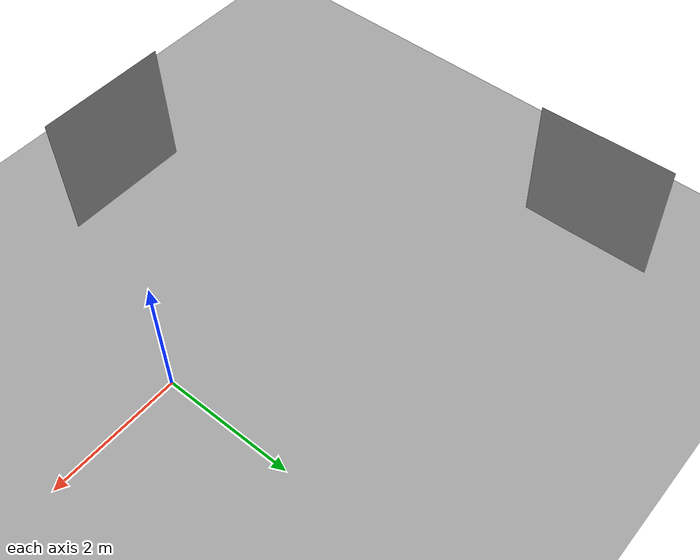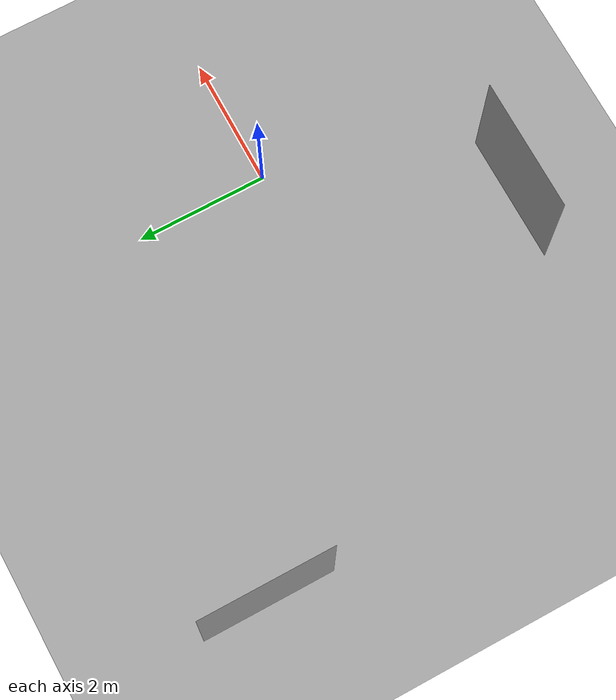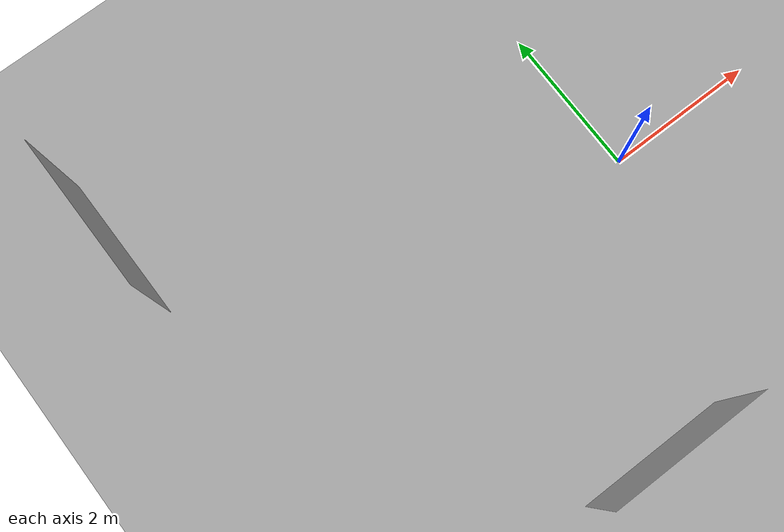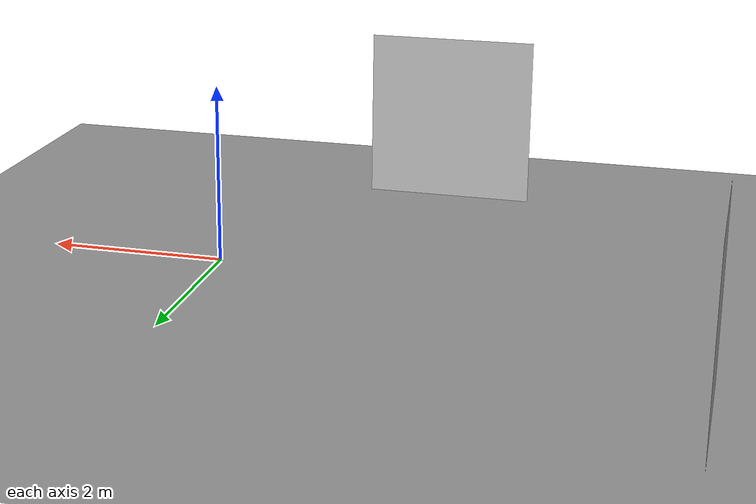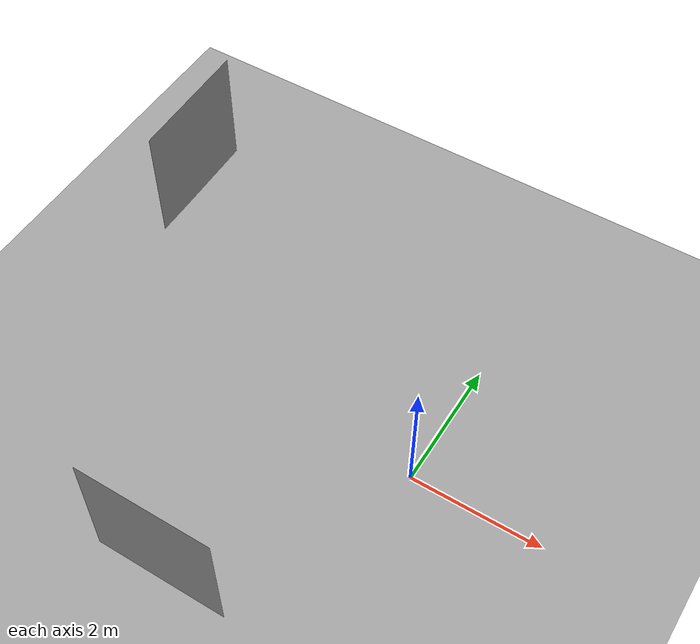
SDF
<sdf version="1.6">
 <world name="default">
  <model name="ground_plane_0">
   <static>1</static>
   <link name="link">
    <collision name="collision">
     <geometry><plane><normal>0 0 1</normal><size>100 100</size></plane></geometry>
     <surface><friction><ode><mu>100</mu><mu2>50</mu2></ode></friction></surface>
    </collision>
    <visual name="visual">
     <cast_shadows>0</cast_shadows>
     <geometry><plane><normal>0 0 1</normal><size>100 100</size></plane></geometry>
     <material>
      <script><uri>file://media/materials/scripts/gazebo.material</uri><name>Gazebo/Grey</name></script>
     </material>
    </visual>
    <velocity_decay><linear>0</linear><angular>0</angular></velocity_decay>
   </link>
   <pose>0.497681 0 0 0 -0 0</pose>
  </model>
  <model name="checkerboard_plane_0_clone">
   <static>1</static>
   <link name="link">
    <visual name="visual">
     <geometry>
      <mesh><uri>model://checkerboard_plane/meshes/checkerboard_plane.dae</uri><scale>1 1 1</scale></mesh>
     </geometry>
    </visual>
   </link>
   <pose>-1.99871 -3.02537 1 -1.55 0 0</pose>
  </model>
  <model name="checkerboard_plane_0_clone_clone">
   <static>1</static>
   <link name="link">
    <visual name="visual">
     <geometry>
      <mesh><uri>model://checkerboard_plane/meshes/checkerboard_plane.dae</uri><scale>1 1 1</scale></mesh>
     </geometry>
    </visual>
   </link>
   <pose>-5.53856 2.82001 0.999837 -1.57074 0.020796 -1.56812</pose>
  </model>
 </world>
</sdf>
